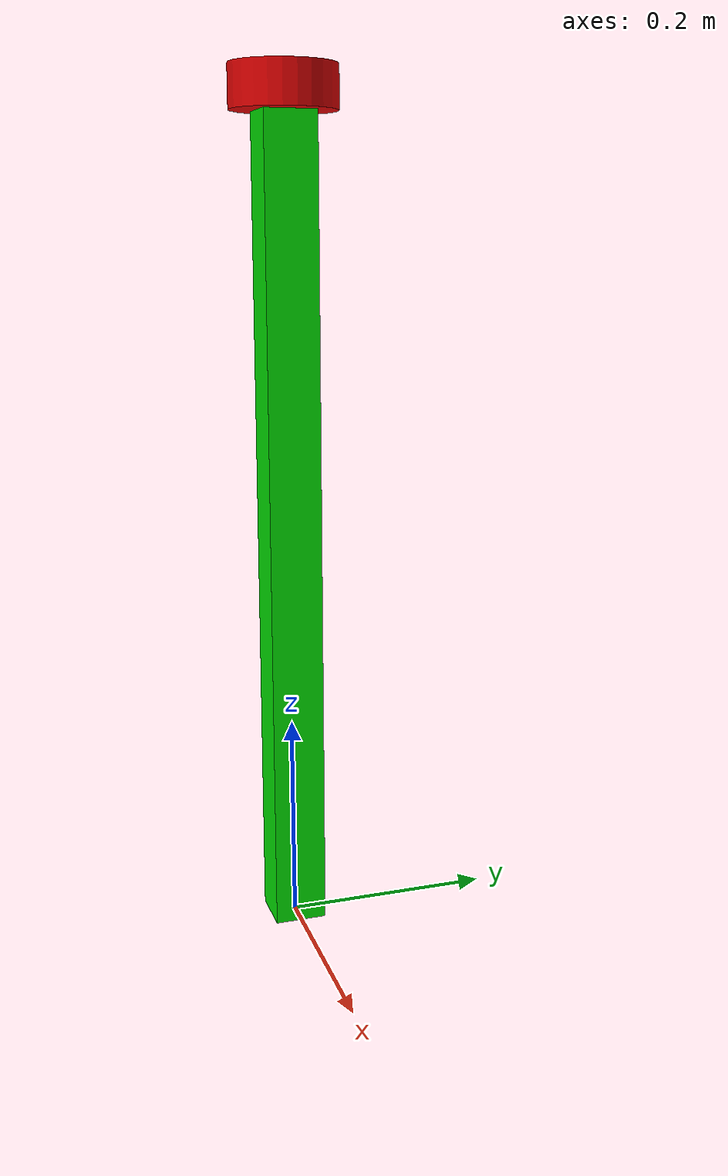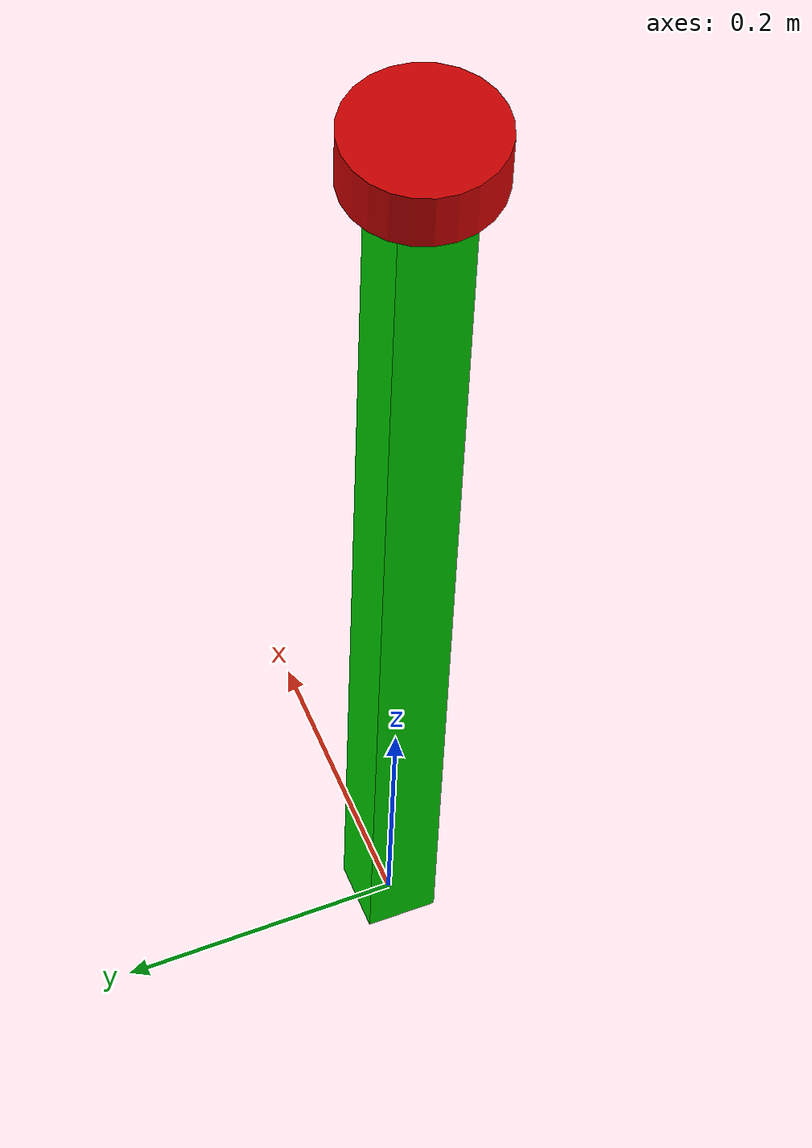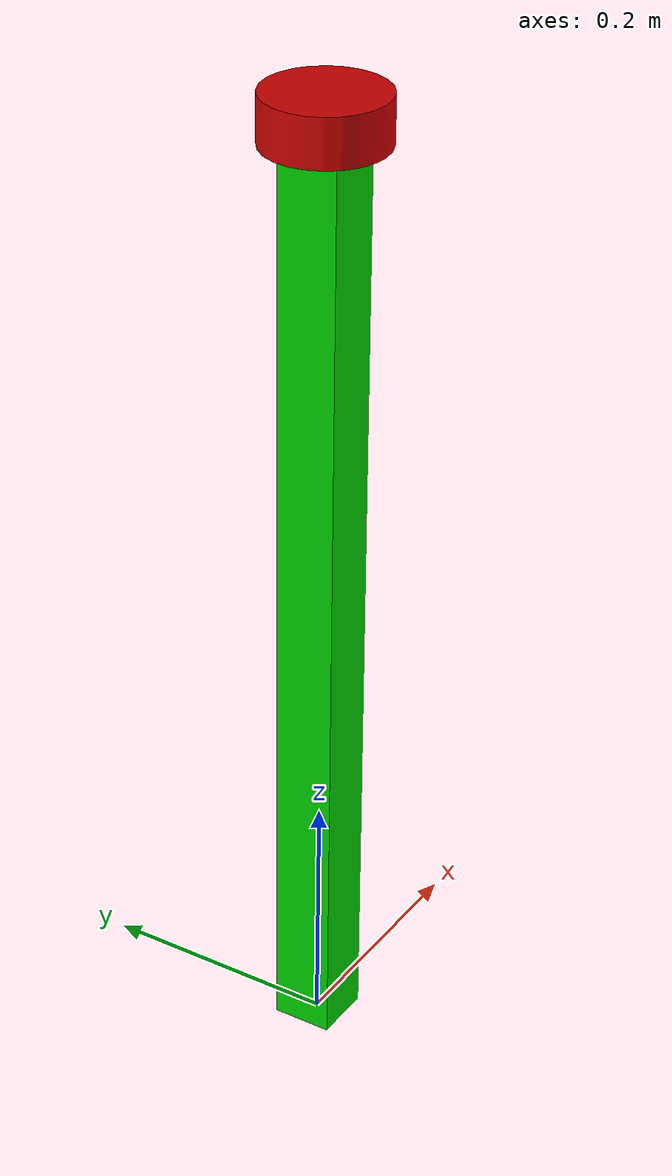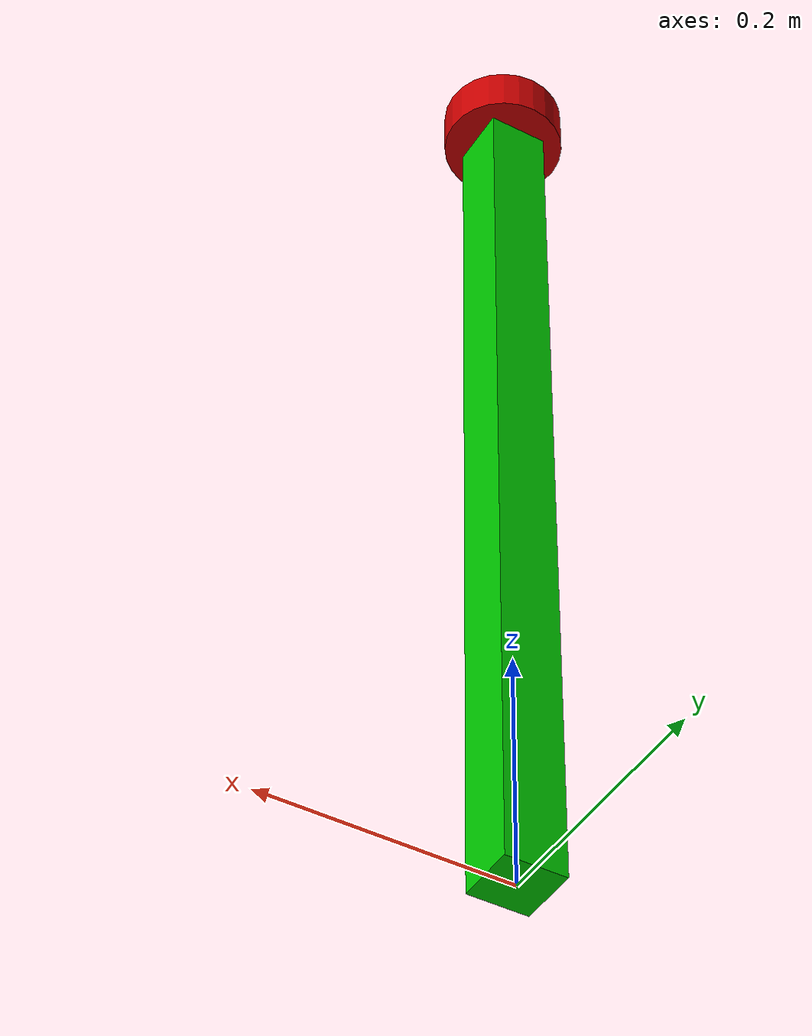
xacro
<?xml version="1.0"?>
<robot xmlns:xacro="http://www.ros.org/wiki/xacro" name="lidar">

    <xacro:include filename="$(find conveyor)/urdf/common_properties.xacro"/>

    <link name="world" />

    <joint name="world_laser" type="fixed">
        <parent link="world"/>
        <child link="laser_link"/>
        <origin xyz="0 0 0.4" rpy="0 0 0"/>
    </joint>

    <link name="laser_link">
        <visual>
            <origin rpy="0 0 0" xyz="0 0 0"/>
            <geometry>
                <box size="0.05 0.05 0.8"/>
            </geometry>
            <material name="green"/>
        </visual>
        <collision>
            <origin rpy="0 0 0" xyz="0 0 0"/>
            <geometry>
                <box size="0.05 0.05 0.8"/>
            </geometry>
		</collision>
        <xacro:inertial_box mass="5" x="0.05" y="0.05" z="0.8">
            <origin xyz="0 0 0" rpy="0 0 0"/>
        </xacro:inertial_box>
    </link>

    <joint name="laser_joint" type="fixed">
        <parent link="laser_link"/>
        <child link="laser_frame"/>
        <origin xyz="0 0 0.4" rpy="0 0 0"/>
    </joint>

    <link name="laser_frame">
        <visual>
            <geometry>
                <cylinder radius="0.05" length="0.04"/>
            </geometry>
            <material name="red"/>
        </visual>
        <collision>
            <geometry>
                <cylinder radius="0.05" length="0.04"/>
            </geometry>
        </collision>
        <xacro:inertial_cylinder mass="0.1" length="0.04" radius="0.05">
            <origin xyz="0 0 0" rpy="0 0 0"/>
        </xacro:inertial_cylinder>
    </link>

    <gazebo reference="laser_frame">
        <material>Gazebo/Red</material>

        <sensor name="laser" type="ray">
            <pose> 0 0 0 0 0 0 </pose>
            <visualize>true</visualize>
            <update_rate>10</update_rate>
            <ray>
                <scan>
                    <horizontal>
                        <samples>30</samples>
                        <min_angle>-0.17</min_angle>
                        <max_angle>0.17</max_angle>
                    </horizontal>
                </scan>
                <range>
                    <min>0.2</min>
                    <max>0.6</max>
                </range>
            </ray>
            <plugin name="laser_controller" filename="libgazebo_ros_laser.so">
                <topicName>scan</topicName>
                <output_type>sensor_msgs/LaserScan</output_type>
                <frame_name>laser_frame</frame_name>
            </plugin>
        </sensor>
    </gazebo>

</robot>

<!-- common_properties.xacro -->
<robot name="xacro_properties" xmlns:xacro="http://ros.org/wiki/xacro">
  <xacro:include filename="$(find conveyor)/urdf/inertial_macros.xacro"/>
  <!-- Init colour -->
  <material name="black">
      <color rgba="0.0 0.0 0.0 1.0"/>
  </material>

  <material name="dark">
    <color rgba="0.3 0.3 0.3 1.0"/>
  </material>
  <material name="light_black">
    <color rgba="0.4 0.4 0.4 1.0"/>
  </material>

  <material name="blue">
    <color rgba="0.0 0.0 0.8 1.0"/>
  </material>

  <material name="green">
    <color rgba="0.0 0.8 0.0 1.0"/>
  </material>

  <material name="grey">
    <color rgba="0.5 0.5 0.5 1.0"/>
  </material>

  <material name="orange">
    <color rgba="${255/255} ${108/255} ${10/255} 1.0"/>
  </material>

  <material name="brown">
    <color rgba="${222/255} ${207/255} ${195/255} 1.0"/>
  </material>

  <material name="red">
    <color rgba="0.8 0.0 0.0 1.0"/>
  </material>

  <material name="white">
    <color rgba="1.0 1.0 1.0 1.0"/>
  </material>

</robot>
